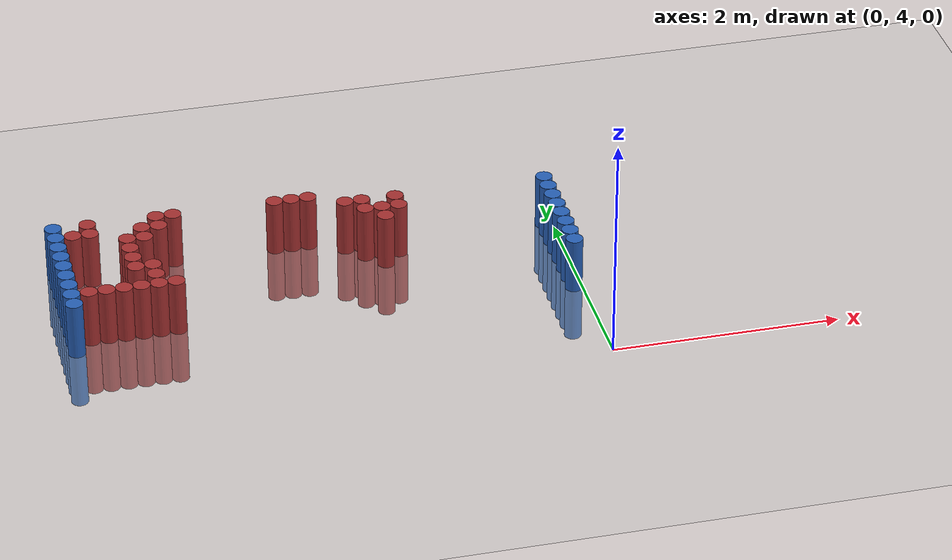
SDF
<sdf version="1.6">
 <world name="default">
  <model name="ground_plane">
   <static>1</static>
   <link name="link">
    <collision name="collision">
     <geometry><plane><normal>0 0 1</normal><size>100 100</size></plane></geometry>
     <surface><friction><ode><mu>100</mu><mu2>50</mu2></ode></friction></surface>
    </collision>
    <visual name="visual">
     <cast_shadows>0</cast_shadows>
     <geometry><plane><normal>0 0 1</normal><size>100 100</size></plane></geometry>
     <material>
      <script><uri>file://media/materials/scripts/gazebo.material</uri><name>Gazebo/Grey</name></script>
     </material>
    </visual>
   </link>
  </model>
  <model name="unit_cylinder_94">
   <static>1</static>
   <pose>-0.075000 5.025000 0.000000 0.000000 0.000000 0.000000</pose>
   <link name="link">
    <inertial>
     <mass>1</mass>
     <inertia><ixx>0.145833</ixx><ixy>0</ixy><ixz>0</ixz><iyy>0.145833</iyy><iyz>0</iyz><izz>0.125</izz></inertia>
    </inertial>
    <collision name="collision">
     <geometry><cylinder><radius>0.075000</radius><length>1</length></cylinder></geometry>
    </collision>
    <visual name="visual">
     <geometry><cylinder><radius>0.075000</radius><length>1</length></cylinder></geometry>
     <material>
      <ambient>0.152000 0.379000 0.720000 1</ambient>
      <diffuse>0.152000 0.379000 0.720000 1</diffuse>
     </material>
     <material>
      <script><name>Gazebo/Grey</name><uri>file://media/materials/scripts/gazebo.material</uri></script>
     </material>
    </visual>
   </link>
  </model>
  <model name="unit_cylinder_95">
   <static>1</static>
   <pose>-4.425000 5.025000 0.000000 0.000000 0.000000 0.000000</pose>
   <link name="link">
    <inertial>
     <mass>1</mass>
     <inertia><ixx>0.145833</ixx><ixy>0</ixy><ixz>0</ixz><iyy>0.145833</iyy><iyz>0</iyz><izz>0.125</izz></inertia>
    </inertial>
    <collision name="collision">
     <geometry><cylinder><radius>0.075000</radius><length>1</length></cylinder></geometry>
    </collision>
    <visual name="visual">
     <geometry><cylinder><radius>0.075000</radius><length>1</length></cylinder></geometry>
     <material>
      <ambient>0.152000 0.379000 0.720000 1</ambient>
      <diffuse>0.152000 0.379000 0.720000 1</diffuse>
     </material>
     <material>
      <script><name>Gazebo/Grey</name><uri>file://media/materials/scripts/gazebo.material</uri></script>
     </material>
    </visual>
   </link>
  </model>
  <model name="unit_cylinder_96">
   <static>1</static>
   <pose>-4.425000 5.175000 0.000000 0.000000 0.000000 0.000000</pose>
   <link name="link">
    <inertial>
     <mass>1</mass>
     <inertia><ixx>0.145833</ixx><ixy>0</ixy><ixz>0</ixz><iyy>0.145833</iyy><iyz>0</iyz><izz>0.125</izz></inertia>
    </inertial>
    <collision name="collision">
     <geometry><cylinder><radius>0.075000</radius><length>1</length></cylinder></geometry>
    </collision>
    <visual name="visual">
     <geometry><cylinder><radius>0.075000</radius><length>1</length></cylinder></geometry>
     <material>
      <ambient>0.152000 0.379000 0.720000 1</ambient>
      <diffuse>0.152000 0.379000 0.720000 1</diffuse>
     </material>
     <material>
      <script><name>Gazebo/Grey</name><uri>file://media/materials/scripts/gazebo.material</uri></script>
     </material>
    </visual>
   </link>
  </model>
  <model name="unit_cylinder_97">
   <static>1</static>
   <pose>-4.425000 5.325000 0.000000 0.000000 0.000000 0.000000</pose>
   <link name="link">
    <inertial>
     <mass>1</mass>
     <inertia><ixx>0.145833</ixx><ixy>0</ixy><ixz>0</ixz><iyy>0.145833</iyy><iyz>0</iyz><izz>0.125</izz></inertia>
    </inertial>
    <collision name="collision">
     <geometry><cylinder><radius>0.075000</radius><length>1</length></cylinder></geometry>
    </collision>
    <visual name="visual">
     <geometry><cylinder><radius>0.075000</radius><length>1</length></cylinder></geometry>
     <material>
      <ambient>0.152000 0.379000 0.720000 1</ambient>
      <diffuse>0.152000 0.379000 0.720000 1</diffuse>
     </material>
     <material>
      <script><name>Gazebo/Grey</name><uri>file://media/materials/scripts/gazebo.material</uri></script>
     </material>
    </visual>
   </link>
  </model>
  <model name="unit_cylinder_98">
   <static>1</static>
   <pose>-4.425000 5.475000 0.000000 0.000000 0.000000 0.000000</pose>
   <link name="link">
    <inertial>
     <mass>1</mass>
     <inertia><ixx>0.145833</ixx><ixy>0</ixy><ixz>0</ixz><iyy>0.145833</iyy><iyz>0</iyz><izz>0.125</izz></inertia>
    </inertial>
    <collision name="collision">
     <geometry><cylinder><radius>0.075000</radius><length>1</length></cylinder></geometry>
    </collision>
    <visual name="visual">
     <geometry><cylinder><radius>0.075000</radius><length>1</length></cylinder></geometry>
     <material>
      <ambient>0.152000 0.379000 0.720000 1</ambient>
      <diffuse>0.152000 0.379000 0.720000 1</diffuse>
     </material>
     <material>
      <script><name>Gazebo/Grey</name><uri>file://media/materials/scripts/gazebo.material</uri></script>
     </material>
    </visual>
   </link>
  </model>
  <model name="unit_cylinder_99">
   <static>1</static>
   <pose>-4.425000 5.625000 0.000000 0.000000 0.000000 0.000000</pose>
   <link name="link">
    <inertial>
     <mass>1</mass>
     <inertia><ixx>0.145833</ixx><ixy>0</ixy><ixz>0</ixz><iyy>0.145833</iyy><iyz>0</iyz><izz>0.125</izz></inertia>
    </inertial>
    <collision name="collision">
     <geometry><cylinder><radius>0.075000</radius><length>1</length></cylinder></geometry>
    </collision>
    <visual name="visual">
     <geometry><cylinder><radius>0.075000</radius><length>1</length></cylinder></geometry>
     <material>
      <ambient>0.152000 0.379000 0.720000 1</ambient>
      <diffuse>0.152000 0.379000 0.720000 1</diffuse>
     </material>
     <material>
      <script><name>Gazebo/Grey</name><uri>file://media/materials/scripts/gazebo.material</uri></script>
     </material>
    </visual>
   </link>
  </model>
  <model name="unit_cylinder_100">
   <static>1</static>
   <pose>-4.425000 5.775000 0.000000 0.000000 0.000000 0.000000</pose>
   <link name="link">
    <inertial>
     <mass>1</mass>
     <inertia><ixx>0.145833</ixx><ixy>0</ixy><ixz>0</ixz><iyy>0.145833</iyy><iyz>0</iyz><izz>0.125</izz></inertia>
    </inertial>
    <collision name="collision">
     <geometry><cylinder><radius>0.075000</radius><length>1</length></cylinder></geometry>
    </collision>
    <visual name="visual">
     <geometry><cylinder><radius>0.075000</radius><length>1</length></cylinder></geometry>
     <material>
      <ambient>0.152000 0.379000 0.720000 1</ambient>
      <diffuse>0.152000 0.379000 0.720000 1</diffuse>
     </material>
     <material>
      <script><name>Gazebo/Grey</name><uri>file://media/materials/scripts/gazebo.material</uri></script>
     </material>
    </visual>
   </link>
  </model>
  <model name="unit_cylinder_101">
   <static>1</static>
   <pose>-4.425000 5.925000 0.000000 0.000000 0.000000 0.000000</pose>
   <link name="link">
    <inertial>
     <mass>1</mass>
     <inertia><ixx>0.145833</ixx><ixy>0</ixy><ixz>0</ixz><iyy>0.145833</iyy><iyz>0</iyz><izz>0.125</izz></inertia>
    </inertial>
    <collision name="collision">
     <geometry><cylinder><radius>0.075000</radius><length>1</length></cylinder></geometry>
    </collision>
    <visual name="visual">
     <geometry><cylinder><radius>0.075000</radius><length>1</length></cylinder></geometry>
     <material>
      <ambient>0.152000 0.379000 0.720000 1</ambient>
      <diffuse>0.152000 0.379000 0.720000 1</diffuse>
     </material>
     <material>
      <script><name>Gazebo/Grey</name><uri>file://media/materials/scripts/gazebo.material</uri></script>
     </material>
    </visual>
   </link>
  </model>
  <model name="unit_cylinder_102">
   <static>1</static>
   <pose>-4.425000 6.075000 0.000000 0.000000 0.000000 0.000000</pose>
   <link name="link">
    <inertial>
     <mass>1</mass>
     <inertia><ixx>0.145833</ixx><ixy>0</ixy><ixz>0</ixz><iyy>0.145833</iyy><iyz>0</iyz><izz>0.125</izz></inertia>
    </inertial>
    <collision name="collision">
     <geometry><cylinder><radius>0.075000</radius><length>1</length></cylinder></geometry>
    </collision>
    <visual name="visual">
     <geometry><cylinder><radius>0.075000</radius><length>1</length></cylinder></geometry>
     <material>
      <ambient>0.152000 0.379000 0.720000 1</ambient>
      <diffuse>0.152000 0.379000 0.720000 1</diffuse>
     </material>
     <material>
      <script><name>Gazebo/Grey</name><uri>file://media/materials/scripts/gazebo.material</uri></script>
     </material>
    </visual>
   </link>
  </model>
  <model name="unit_cylinder_103">
   <static>1</static>
   <pose>-4.425000 6.225000 0.000000 0.000000 0.000000 0.000000</pose>
   <link name="link">
    <inertial>
     <mass>1</mass>
     <inertia><ixx>0.145833</ixx><ixy>0</ixy><ixz>0</ixz><iyy>0.145833</iyy><iyz>0</iyz><izz>0.125</izz></inertia>
    </inertial>
    <collision name="collision">
     <geometry><cylinder><radius>0.075000</radius><length>1</length></cylinder></geometry>
    </collision>
    <visual name="visual">
     <geometry><cylinder><radius>0.075000</radius><length>1</length></cylinder></geometry>
     <material>
      <ambient>0.152000 0.379000 0.720000 1</ambient>
      <diffuse>0.152000 0.379000 0.720000 1</diffuse>
     </material>
     <material>
      <script><name>Gazebo/Grey</name><uri>file://media/materials/scripts/gazebo.material</uri></script>
     </material>
    </visual>
   </link>
  </model>
  <model name="unit_cylinder_126">
   <static>1</static>
   <pose>-4.275000 5.175000 0.000000 0.000000 0.000000 0.000000</pose>
   <link name="link">
    <inertial>
     <mass>1</mass>
     <inertia><ixx>0.145833</ixx><ixy>0</ixy><ixz>0</ixz><iyy>0.145833</iyy><iyz>0</iyz><izz>0.125</izz></inertia>
    </inertial>
    <collision name="collision">
     <geometry><cylinder><radius>0.075000</radius><length>1</length></cylinder></geometry>
    </collision>
    <visual name="visual">
     <geometry><cylinder><radius>0.075000</radius><length>1</length></cylinder></geometry>
     <material>
      <ambient>0.648000 0.192000 0.192000 1</ambient>
      <diffuse>0.648000 0.192000 0.192000 1</diffuse>
     </material>
     <material>
      <script><name>Gazebo/Grey</name><uri>file://media/materials/scripts/gazebo.material</uri></script>
     </material>
    </visual>
   </link>
  </model>
  <model name="unit_cylinder_127">
   <static>1</static>
   <pose>-4.275000 6.075000 0.000000 0.000000 0.000000 0.000000</pose>
   <link name="link">
    <inertial>
     <mass>1</mass>
     <inertia><ixx>0.145833</ixx><ixy>0</ixy><ixz>0</ixz><iyy>0.145833</iyy><iyz>0</iyz><izz>0.125</izz></inertia>
    </inertial>
    <collision name="collision">
     <geometry><cylinder><radius>0.075000</radius><length>1</length></cylinder></geometry>
    </collision>
    <visual name="visual">
     <geometry><cylinder><radius>0.075000</radius><length>1</length></cylinder></geometry>
     <material>
      <ambient>0.648000 0.192000 0.192000 1</ambient>
      <diffuse>0.648000 0.192000 0.192000 1</diffuse>
     </material>
     <material>
      <script><name>Gazebo/Grey</name><uri>file://media/materials/scripts/gazebo.material</uri></script>
     </material>
    </visual>
   </link>
  </model>
  <model name="unit_cylinder_130">
   <static>1</static>
   <pose>-4.125000 5.175000 0.000000 0.000000 0.000000 0.000000</pose>
   <link name="link">
    <inertial>
     <mass>1</mass>
     <inertia><ixx>0.145833</ixx><ixy>0</ixy><ixz>0</ixz><iyy>0.145833</iyy><iyz>0</iyz><izz>0.125</izz></inertia>
    </inertial>
    <collision name="collision">
     <geometry><cylinder><radius>0.075000</radius><length>1</length></cylinder></geometry>
    </collision>
    <visual name="visual">
     <geometry><cylinder><radius>0.075000</radius><length>1</length></cylinder></geometry>
     <material>
      <ambient>0.648000 0.192000 0.192000 1</ambient>
      <diffuse>0.648000 0.192000 0.192000 1</diffuse>
     </material>
     <material>
      <script><name>Gazebo/Grey</name><uri>file://media/materials/scripts/gazebo.material</uri></script>
     </material>
    </visual>
   </link>
  </model>
  <model name="unit_cylinder_131">
   <static>1</static>
   <pose>-4.125000 6.075000 0.000000 0.000000 0.000000 0.000000</pose>
   <link name="link">
    <inertial>
     <mass>1</mass>
     <inertia><ixx>0.145833</ixx><ixy>0</ixy><ixz>0</ixz><iyy>0.145833</iyy><iyz>0</iyz><izz>0.125</izz></inertia>
    </inertial>
    <collision name="collision">
     <geometry><cylinder><radius>0.075000</radius><length>1</length></cylinder></geometry>
    </collision>
    <visual name="visual">
     <geometry><cylinder><radius>0.075000</radius><length>1</length></cylinder></geometry>
     <material>
      <ambient>0.648000 0.192000 0.192000 1</ambient>
      <diffuse>0.648000 0.192000 0.192000 1</diffuse>
     </material>
     <material>
      <script><name>Gazebo/Grey</name><uri>file://media/materials/scripts/gazebo.material</uri></script>
     </material>
    </visual>
   </link>
  </model>
  <model name="unit_cylinder_132">
   <static>1</static>
   <pose>-4.125000 6.225000 0.000000 0.000000 0.000000 0.000000</pose>
   <link name="link">
    <inertial>
     <mass>1</mass>
     <inertia><ixx>0.145833</ixx><ixy>0</ixy><ixz>0</ixz><iyy>0.145833</iyy><iyz>0</iyz><izz>0.125</izz></inertia>
    </inertial>
    <collision name="collision">
     <geometry><cylinder><radius>0.075000</radius><length>1</length></cylinder></geometry>
    </collision>
    <visual name="visual">
     <geometry><cylinder><radius>0.075000</radius><length>1</length></cylinder></geometry>
     <material>
      <ambient>0.648000 0.192000 0.192000 1</ambient>
      <diffuse>0.648000 0.192000 0.192000 1</diffuse>
     </material>
     <material>
      <script><name>Gazebo/Grey</name><uri>file://media/materials/scripts/gazebo.material</uri></script>
     </material>
    </visual>
   </link>
  </model>
  <model name="unit_cylinder_136">
   <static>1</static>
   <pose>-3.975000 5.175000 0.000000 0.000000 0.000000 0.000000</pose>
   <link name="link">
    <inertial>
     <mass>1</mass>
     <inertia><ixx>0.145833</ixx><ixy>0</ixy><ixz>0</ixz><iyy>0.145833</iyy><iyz>0</iyz><izz>0.125</izz></inertia>
    </inertial>
    <collision name="collision">
     <geometry><cylinder><radius>0.075000</radius><length>1</length></cylinder></geometry>
    </collision>
    <visual name="visual">
     <geometry><cylinder><radius>0.075000</radius><length>1</length></cylinder></geometry>
     <material>
      <ambient>0.648000 0.192000 0.192000 1</ambient>
      <diffuse>0.648000 0.192000 0.192000 1</diffuse>
     </material>
     <material>
      <script><name>Gazebo/Grey</name><uri>file://media/materials/scripts/gazebo.material</uri></script>
     </material>
    </visual>
   </link>
  </model>
  <model name="unit_cylinder_139">
   <static>1</static>
   <pose>-3.825000 5.175000 0.000000 0.000000 0.000000 0.000000</pose>
   <link name="link">
    <inertial>
     <mass>1</mass>
     <inertia><ixx>0.145833</ixx><ixy>0</ixy><ixz>0</ixz><iyy>0.145833</iyy><iyz>0</iyz><izz>0.125</izz></inertia>
    </inertial>
    <collision name="collision">
     <geometry><cylinder><radius>0.075000</radius><length>1</length></cylinder></geometry>
    </collision>
    <visual name="visual">
     <geometry><cylinder><radius>0.075000</radius><length>1</length></cylinder></geometry>
     <material>
      <ambient>0.648000 0.192000 0.192000 1</ambient>
      <diffuse>0.648000 0.192000 0.192000 1</diffuse>
     </material>
     <material>
      <script><name>Gazebo/Grey</name><uri>file://media/materials/scripts/gazebo.material</uri></script>
     </material>
    </visual>
   </link>
  </model>
  <model name="unit_cylinder_140">
   <static>1</static>
   <pose>-3.825000 5.475000 0.000000 0.000000 0.000000 0.000000</pose>
   <link name="link">
    <inertial>
     <mass>1</mass>
     <inertia><ixx>0.145833</ixx><ixy>0</ixy><ixz>0</ixz><iyy>0.145833</iyy><iyz>0</iyz><izz>0.125</izz></inertia>
    </inertial>
    <collision name="collision">
     <geometry><cylinder><radius>0.075000</radius><length>1</length></cylinder></geometry>
    </collision>
    <visual name="visual">
     <geometry><cylinder><radius>0.075000</radius><length>1</length></cylinder></geometry>
     <material>
      <ambient>0.648000 0.192000 0.192000 1</ambient>
      <diffuse>0.648000 0.192000 0.192000 1</diffuse>
     </material>
     <material>
      <script><name>Gazebo/Grey</name><uri>file://media/materials/scripts/gazebo.material</uri></script>
     </material>
    </visual>
   </link>
  </model>
  <model name="unit_cylinder_141">
   <static>1</static>
   <pose>-3.825000 5.625000 0.000000 0.000000 0.000000 0.000000</pose>
   <link name="link">
    <inertial>
     <mass>1</mass>
     <inertia><ixx>0.145833</ixx><ixy>0</ixy><ixz>0</ixz><iyy>0.145833</iyy><iyz>0</iyz><izz>0.125</izz></inertia>
    </inertial>
    <collision name="collision">
     <geometry><cylinder><radius>0.075000</radius><length>1</length></cylinder></geometry>
    </collision>
    <visual name="visual">
     <geometry><cylinder><radius>0.075000</radius><length>1</length></cylinder></geometry>
     <material>
      <ambient>0.648000 0.192000 0.192000 1</ambient>
      <diffuse>0.648000 0.192000 0.192000 1</diffuse>
     </material>
     <material>
      <script><name>Gazebo/Grey</name><uri>file://media/materials/scripts/gazebo.material</uri></script>
     </material>
    </visual>
   </link>
  </model>
  <model name="unit_cylinder_142">
   <static>1</static>
   <pose>-3.825000 5.775000 0.000000 0.000000 0.000000 0.000000</pose>
   <link name="link">
    <inertial>
     <mass>1</mass>
     <inertia><ixx>0.145833</ixx><ixy>0</ixy><ixz>0</ixz><iyy>0.145833</iyy><iyz>0</iyz><izz>0.125</izz></inertia>
    </inertial>
    <collision name="collision">
     <geometry><cylinder><radius>0.075000</radius><length>1</length></cylinder></geometry>
    </collision>
    <visual name="visual">
     <geometry><cylinder><radius>0.075000</radius><length>1</length></cylinder></geometry>
     <material>
      <ambient>0.648000 0.192000 0.192000 1</ambient>
      <diffuse>0.648000 0.192000 0.192000 1</diffuse>
     </material>
     <material>
      <script><name>Gazebo/Grey</name><uri>file://media/materials/scripts/gazebo.material</uri></script>
     </material>
    </visual>
   </link>
  </model>
  <model name="unit_cylinder_143">
   <static>1</static>
   <pose>-3.825000 5.925000 0.000000 0.000000 0.000000 0.000000</pose>
   <link name="link">
    <inertial>
     <mass>1</mass>
     <inertia><ixx>0.145833</ixx><ixy>0</ixy><ixz>0</ixz><iyy>0.145833</iyy><iyz>0</iyz><izz>0.125</izz></inertia>
    </inertial>
    <collision name="collision">
     <geometry><cylinder><radius>0.075000</radius><length>1</length></cylinder></geometry>
    </collision>
    <visual name="visual">
     <geometry><cylinder><radius>0.075000</radius><length>1</length></cylinder></geometry>
     <material>
      <ambient>0.648000 0.192000 0.192000 1</ambient>
      <diffuse>0.648000 0.192000 0.192000 1</diffuse>
     </material>
     <material>
      <script><name>Gazebo/Grey</name><uri>file://media/materials/scripts/gazebo.material</uri></script>
     </material>
    </visual>
   </link>
  </model>
  <model name="unit_cylinder_146">
   <static>1</static>
   <pose>-3.675000 5.175000 0.000000 0.000000 0.000000 0.000000</pose>
   <link name="link">
    <inertial>
     <mass>1</mass>
     <inertia><ixx>0.145833</ixx><ixy>0</ixy><ixz>0</ixz><iyy>0.145833</iyy><iyz>0</iyz><izz>0.125</izz></inertia>
    </inertial>
    <collision name="collision">
     <geometry><cylinder><radius>0.075000</radius><length>1</length></cylinder></geometry>
    </collision>
    <visual name="visual">
     <geometry><cylinder><radius>0.075000</radius><length>1</length></cylinder></geometry>
     <material>
      <ambient>0.648000 0.192000 0.192000 1</ambient>
      <diffuse>0.648000 0.192000 0.192000 1</diffuse>
     </material>
     <material>
      <script><name>Gazebo/Grey</name><uri>file://media/materials/scripts/gazebo.material</uri></script>
     </material>
    </visual>
   </link>
  </model>
  <model name="unit_cylinder_147">
   <static>1</static>
   <pose>-3.675000 5.325000 0.000000 0.000000 0.000000 0.000000</pose>
   <link name="link">
    <inertial>
     <mass>1</mass>
     <inertia><ixx>0.145833</ixx><ixy>0</ixy><ixz>0</ixz><iyy>0.145833</iyy><iyz>0</iyz><izz>0.125</izz></inertia>
    </inertial>
    <collision name="collision">
     <geometry><cylinder><radius>0.075000</radius><length>1</length></cylinder></geometry>
    </collision>
    <visual name="visual">
     <geometry><cylinder><radius>0.075000</radius><length>1</length></cylinder></geometry>
     <material>
      <ambient>0.648000 0.192000 0.192000 1</ambient>
      <diffuse>0.648000 0.192000 0.192000 1</diffuse>
     </material>
     <material>
      <script><name>Gazebo/Grey</name><uri>file://media/materials/scripts/gazebo.material</uri></script>
     </material>
    </visual>
   </link>
  </model>
  <model name="unit_cylinder_148">
   <static>1</static>
   <pose>-3.675000 5.475000 0.000000 0.000000 0.000000 0.000000</pose>
   <link name="link">
    <inertial>
     <mass>1</mass>
     <inertia><ixx>0.145833</ixx><ixy>0</ixy><ixz>0</ixz><iyy>0.145833</iyy><iyz>0</iyz><izz>0.125</izz></inertia>
    </inertial>
    <collision name="collision">
     <geometry><cylinder><radius>0.075000</radius><length>1</length></cylinder></geometry>
    </collision>
    <visual name="visual">
     <geometry><cylinder><radius>0.075000</radius><length>1</length></cylinder></geometry>
     <material>
      <ambient>0.648000 0.192000 0.192000 1</ambient>
      <diffuse>0.648000 0.192000 0.192000 1</diffuse>
     </material>
     <material>
      <script><name>Gazebo/Grey</name><uri>file://media/materials/scripts/gazebo.material</uri></script>
     </material>
    </visual>
   </link>
  </model>
  <model name="unit_cylinder_149">
   <static>1</static>
   <pose>-3.675000 5.925000 0.000000 0.000000 0.000000 0.000000</pose>
   <link name="link">
    <inertial>
     <mass>1</mass>
     <inertia><ixx>0.145833</ixx><ixy>0</ixy><ixz>0</ixz><iyy>0.145833</iyy><iyz>0</iyz><izz>0.125</izz></inertia>
    </inertial>
    <collision name="collision">
     <geometry><cylinder><radius>0.075000</radius><length>1</length></cylinder></geometry>
    </collision>
    <visual name="visual">
     <geometry><cylinder><radius>0.075000</radius><length>1</length></cylinder></geometry>
     <material>
      <ambient>0.648000 0.192000 0.192000 1</ambient>
      <diffuse>0.648000 0.192000 0.192000 1</diffuse>
     </material>
     <material>
      <script><name>Gazebo/Grey</name><uri>file://media/materials/scripts/gazebo.material</uri></script>
     </material>
    </visual>
   </link>
  </model>
  <model name="unit_cylinder_150">
   <static>1</static>
   <pose>-3.675000 6.075000 0.000000 0.000000 0.000000 0.000000</pose>
   <link name="link">
    <inertial>
     <mass>1</mass>
     <inertia><ixx>0.145833</ixx><ixy>0</ixy><ixz>0</ixz><iyy>0.145833</iyy><iyz>0</iyz><izz>0.125</izz></inertia>
    </inertial>
    <collision name="collision">
     <geometry><cylinder><radius>0.075000</radius><length>1</length></cylinder></geometry>
    </collision>
    <visual name="visual">
     <geometry><cylinder><radius>0.075000</radius><length>1</length></cylinder></geometry>
     <material>
      <ambient>0.648000 0.192000 0.192000 1</ambient>
      <diffuse>0.648000 0.192000 0.192000 1</diffuse>
     </material>
     <material>
      <script><name>Gazebo/Grey</name><uri>file://media/materials/scripts/gazebo.material</uri></script>
     </material>
    </visual>
   </link>
  </model>
  <model name="unit_cylinder_152">
   <static>1</static>
   <pose>-3.525000 5.175000 0.000000 0.000000 0.000000 0.000000</pose>
   <link name="link">
    <inertial>
     <mass>1</mass>
     <inertia><ixx>0.145833</ixx><ixy>0</ixy><ixz>0</ixz><iyy>0.145833</iyy><iyz>0</iyz><izz>0.125</izz></inertia>
    </inertial>
    <collision name="collision">
     <geometry><cylinder><radius>0.075000</radius><length>1</length></cylinder></geometry>
    </collision>
    <visual name="visual">
     <geometry><cylinder><radius>0.075000</radius><length>1</length></cylinder></geometry>
     <material>
      <ambient>0.648000 0.192000 0.192000 1</ambient>
      <diffuse>0.648000 0.192000 0.192000 1</diffuse>
     </material>
     <material>
      <script><name>Gazebo/Grey</name><uri>file://media/materials/scripts/gazebo.material</uri></script>
     </material>
    </visual>
   </link>
  </model>
  <model name="unit_cylinder_153">
   <static>1</static>
   <pose>-3.525000 6.075000 0.000000 0.000000 0.000000 0.000000</pose>
   <link name="link">
    <inertial>
     <mass>1</mass>
     <inertia><ixx>0.145833</ixx><ixy>0</ixy><ixz>0</ixz><iyy>0.145833</iyy><iyz>0</iyz><izz>0.125</izz></inertia>
    </inertial>
    <collision name="collision">
     <geometry><cylinder><radius>0.075000</radius><length>1</length></cylinder></geometry>
    </collision>
    <visual name="visual">
     <geometry><cylinder><radius>0.075000</radius><length>1</length></cylinder></geometry>
     <material>
      <ambient>0.648000 0.192000 0.192000 1</ambient>
      <diffuse>0.648000 0.192000 0.192000 1</diffuse>
     </material>
     <material>
      <script><name>Gazebo/Grey</name><uri>file://media/materials/scripts/gazebo.material</uri></script>
     </material>
    </visual>
   </link>
  </model>
  <model name="unit_cylinder_154">
   <static>1</static>
   <pose>-3.525000 6.225000 0.000000 0.000000 0.000000 0.000000</pose>
   <link name="link">
    <inertial>
     <mass>1</mass>
     <inertia><ixx>0.145833</ixx><ixy>0</ixy><ixz>0</ixz><iyy>0.145833</iyy><iyz>0</iyz><izz>0.125</izz></inertia>
    </inertial>
    <collision name="collision">
     <geometry><cylinder><radius>0.075000</radius><length>1</length></cylinder></geometry>
    </collision>
    <visual name="visual">
     <geometry><cylinder><radius>0.075000</radius><length>1</length></cylinder></geometry>
     <material>
      <ambient>0.648000 0.192000 0.192000 1</ambient>
      <diffuse>0.648000 0.192000 0.192000 1</diffuse>
     </material>
     <material>
      <script><name>Gazebo/Grey</name><uri>file://media/materials/scripts/gazebo.material</uri></script>
     </material>
    </visual>
   </link>
  </model>
  <model name="unit_cylinder_157">
   <static>1</static>
   <pose>-3.375000 6.225000 0.000000 0.000000 0.000000 0.000000</pose>
   <link name="link">
    <inertial>
     <mass>1</mass>
     <inertia><ixx>0.145833</ixx><ixy>0</ixy><ixz>0</ixz><iyy>0.145833</iyy><iyz>0</iyz><izz>0.125</izz></inertia>
    </inertial>
    <collision name="collision">
     <geometry><cylinder><radius>0.075000</radius><length>1</length></cylinder></geometry>
    </collision>
    <visual name="visual">
     <geometry><cylinder><radius>0.075000</radius><length>1</length></cylinder></geometry>
     <material>
      <ambient>0.648000 0.192000 0.192000 1</ambient>
      <diffuse>0.648000 0.192000 0.192000 1</diffuse>
     </material>
     <material>
      <script><name>Gazebo/Grey</name><uri>file://media/materials/scripts/gazebo.material</uri></script>
     </material>
    </visual>
   </link>
  </model>
  <model name="unit_cylinder_179">
   <static>1</static>
   <pose>-2.475000 6.225000 0.000000 0.000000 0.000000 0.000000</pose>
   <link name="link">
    <inertial>
     <mass>1</mass>
     <inertia><ixx>0.145833</ixx><ixy>0</ixy><ixz>0</ixz><iyy>0.145833</iyy><iyz>0</iyz><izz>0.125</izz></inertia>
    </inertial>
    <collision name="collision">
     <geometry><cylinder><radius>0.075000</radius><length>1</length></cylinder></geometry>
    </collision>
    <visual name="visual">
     <geometry><cylinder><radius>0.075000</radius><length>1</length></cylinder></geometry>
     <material>
      <ambient>0.648000 0.192000 0.192000 1</ambient>
      <diffuse>0.648000 0.192000 0.192000 1</diffuse>
     </material>
     <material>
      <script><name>Gazebo/Grey</name><uri>file://media/materials/scripts/gazebo.material</uri></script>
     </material>
    </visual>
   </link>
  </model>
  <model name="unit_cylinder_187">
   <static>1</static>
   <pose>-2.325000 6.225000 0.000000 0.000000 0.000000 0.000000</pose>
   <link name="link">
    <inertial>
     <mass>1</mass>
     <inertia><ixx>0.145833</ixx><ixy>0</ixy><ixz>0</ixz><iyy>0.145833</iyy><iyz>0</iyz><izz>0.125</izz></inertia>
    </inertial>
    <collision name="collision">
     <geometry><cylinder><radius>0.075000</radius><length>1</length></cylinder></geometry>
    </collision>
    <visual name="visual">
     <geometry><cylinder><radius>0.075000</radius><length>1</length></cylinder></geometry>
     <material>
      <ambient>0.648000 0.192000 0.192000 1</ambient>
      <diffuse>0.648000 0.192000 0.192000 1</diffuse>
     </material>
     <material>
      <script><name>Gazebo/Grey</name><uri>file://media/materials/scripts/gazebo.material</uri></script>
     </material>
    </visual>
   </link>
  </model>
  <model name="unit_cylinder_195">
   <static>1</static>
   <pose>-2.175000 6.225000 0.000000 0.000000 0.000000 0.000000</pose>
   <link name="link">
    <inertial>
     <mass>1</mass>
     <inertia><ixx>0.145833</ixx><ixy>0</ixy><ixz>0</ixz><iyy>0.145833</iyy><iyz>0</iyz><izz>0.125</izz></inertia>
    </inertial>
    <collision name="collision">
     <geometry><cylinder><radius>0.075000</radius><length>1</length></cylinder></geometry>
    </collision>
    <visual name="visual">
     <geometry><cylinder><radius>0.075000</radius><length>1</length></cylinder></geometry>
     <material>
      <ambient>0.648000 0.192000 0.192000 1</ambient>
      <diffuse>0.648000 0.192000 0.192000 1</diffuse>
     </material>
     <material>
      <script><name>Gazebo/Grey</name><uri>file://media/materials/scripts/gazebo.material</uri></script>
     </material>
    </visual>
   </link>
  </model>
  <model name="unit_cylinder_203">
   <static>1</static>
   <pose>-1.875000 6.075000 0.000000 0.000000 0.000000 0.000000</pose>
   <link name="link">
    <inertial>
     <mass>1</mass>
     <inertia><ixx>0.145833</ixx><ixy>0</ixy><ixz>0</ixz><iyy>0.145833</iyy><iyz>0</iyz><izz>0.125</izz></inertia>
    </inertial>
    <collision name="collision">
     <geometry><cylinder><radius>0.075000</radius><length>1</length></cylinder></geometry>
    </collision>
    <visual name="visual">
     <geometry><cylinder><radius>0.075000</radius><length>1</length></cylinder></geometry>
     <material>
      <ambient>0.648000 0.192000 0.192000 1</ambient>
      <diffuse>0.648000 0.192000 0.192000 1</diffuse>
     </material>
     <material>
      <script><name>Gazebo/Grey</name><uri>file://media/materials/scripts/gazebo.material</uri></script>
     </material>
    </visual>
   </link>
  </model>
  <model name="unit_cylinder_206">
   <static>1</static>
   <pose>-1.725000 5.925000 0.000000 0.000000 0.000000 0.000000</pose>
   <link name="link">
    <inertial>
     <mass>1</mass>
     <inertia><ixx>0.145833</ixx><ixy>0</ixy><ixz>0</ixz><iyy>0.145833</iyy><iyz>0</iyz><izz>0.125</izz></inertia>
    </inertial>
    <collision name="collision">
     <geometry><cylinder><radius>0.075000</radius><length>1</length></cylinder></geometry>
    </collision>
    <visual name="visual">
     <geometry><cylinder><radius>0.075000</radius><length>1</length></cylinder></geometry>
     <material>
      <ambient>0.648000 0.192000 0.192000 1</ambient>
      <diffuse>0.648000 0.192000 0.192000 1</diffuse>
     </material>
     <material>
      <script><name>Gazebo/Grey</name><uri>file://media/materials/scripts/gazebo.material</uri></script>
     </material>
    </visual>
   </link>
  </model>
  <model name="unit_cylinder_207">
   <static>1</static>
   <pose>-1.725000 6.075000 0.000000 0.000000 0.000000 0.000000</pose>
   <link name="link">
    <inertial>
     <mass>1</mass>
     <inertia><ixx>0.145833</ixx><ixy>0</ixy><ixz>0</ixz><iyy>0.145833</iyy><iyz>0</iyz><izz>0.125</izz></inertia>
    </inertial>
    <collision name="collision">
     <geometry><cylinder><radius>0.075000</radius><length>1</length></cylinder></geometry>
    </collision>
    <visual name="visual">
     <geometry><cylinder><radius>0.075000</radius><length>1</length></cylinder></geometry>
     <material>
      <ambient>0.648000 0.192000 0.192000 1</ambient>
      <diffuse>0.648000 0.192000 0.192000 1</diffuse>
     </material>
     <material>
      <script><name>Gazebo/Grey</name><uri>file://media/materials/scripts/gazebo.material</uri></script>
     </material>
    </visual>
   </link>
  </model>
  <model name="unit_cylinder_211">
   <static>1</static>
   <pose>-1.575000 5.775000 0.000000 0.000000 0.000000 0.000000</pose>
   <link name="link">
    <inertial>
     <mass>1</mass>
     <inertia><ixx>0.145833</ixx><ixy>0</ixy><ixz>0</ixz><iyy>0.145833</iyy><iyz>0</iyz><izz>0.125</izz></inertia>
    </inertial>
    <collision name="collision">
     <geometry><cylinder><radius>0.075000</radius><length>1</length></cylinder></geometry>
    </collision>
    <visual name="visual">
     <geometry><cylinder><radius>0.075000</radius><length>1</length></cylinder></geometry>
     <material>
      <ambient>0.648000 0.192000 0.192000 1</ambient>
      <diffuse>0.648000 0.192000 0.192000 1</diffuse>
     </material>
     <material>
      <script><name>Gazebo/Grey</name><uri>file://media/materials/scripts/gazebo.material</uri></script>
     </material>
    </visual>
   </link>
  </model>
  <model name="unit_cylinder_212">
   <static>1</static>
   <pose>-1.575000 5.925000 0.000000 0.000000 0.000000 0.000000</pose>
   <link name="link">
    <inertial>
     <mass>1</mass>
     <inertia><ixx>0.145833</ixx><ixy>0</ixy><ixz>0</ixz><iyy>0.145833</iyy><iyz>0</iyz><izz>0.125</izz></inertia>
    </inertial>
    <collision name="collision">
     <geometry><cylinder><radius>0.075000</radius><length>1</length></cylinder></geometry>
    </collision>
    <visual name="visual">
     <geometry><cylinder><radius>0.075000</radius><length>1</length></cylinder></geometry>
     <material>
      <ambient>0.648000 0.192000 0.192000 1</ambient>
      <diffuse>0.648000 0.192000 0.192000 1</diffuse>
     </material>
     <material>
      <script><name>Gazebo/Grey</name><uri>file://media/materials/scripts/gazebo.material</uri></script>
     </material>
    </visual>
   </link>
  </model>
  <model name="unit_cylinder_218">
   <static>1</static>
   <pose>-1.425000 5.925000 0.000000 0.000000 0.000000 0.000000</pose>
   <link name="link">
    <inertial>
     <mass>1</mass>
     <inertia><ixx>0.145833</ixx><ixy>0</ixy><ixz>0</ixz><iyy>0.145833</iyy><iyz>0</iyz><izz>0.125</izz></inertia>
    </inertial>
    <collision name="collision">
     <geometry><cylinder><radius>0.075000</radius><length>1</length></cylinder></geometry>
    </collision>
    <visual name="visual">
     <geometry><cylinder><radius>0.075000</radius><length>1</length></cylinder></geometry>
     <material>
      <ambient>0.648000 0.192000 0.192000 1</ambient>
      <diffuse>0.648000 0.192000 0.192000 1</diffuse>
     </material>
     <material>
      <script><name>Gazebo/Grey</name><uri>file://media/materials/scripts/gazebo.material</uri></script>
     </material>
    </visual>
   </link>
  </model>
  <model name="unit_cylinder_219">
   <static>1</static>
   <pose>-1.425000 6.075000 0.000000 0.000000 0.000000 0.000000</pose>
   <link name="link">
    <inertial>
     <mass>1</mass>
     <inertia><ixx>0.145833</ixx><ixy>0</ixy><ixz>0</ixz><iyy>0.145833</iyy><iyz>0</iyz><izz>0.125</izz></inertia>
    </inertial>
    <collision name="collision">
     <geometry><cylinder><radius>0.075000</radius><length>1</length></cylinder></geometry>
    </collision>
    <visual name="visual">
     <geometry><cylinder><radius>0.075000</radius><length>1</length></cylinder></geometry>
     <material>
      <ambient>0.648000 0.192000 0.192000 1</ambient>
      <diffuse>0.648000 0.192000 0.192000 1</diffuse>
     </material>
     <material>
      <script><name>Gazebo/Grey</name><uri>file://media/materials/scripts/gazebo.material</uri></script>
     </material>
    </visual>
   </link>
  </model>
  <model name="unit_cylinder_251">
   <static>1</static>
   <pose>-0.075000 5.175000 0.000000 0.000000 0.000000 0.000000</pose>
   <link name="link">
    <inertial>
     <mass>1</mass>
     <inertia><ixx>0.145833</ixx><ixy>0</ixy><ixz>0</ixz><iyy>0.145833</iyy><iyz>0</iyz><izz>0.125</izz></inertia>
    </inertial>
    <collision name="collision">
     <geometry><cylinder><radius>0.075000</radius><length>1</length></cylinder></geometry>
    </collision>
    <visual name="visual">
     <geometry><cylinder><radius>0.075000</radius><length>1</length></cylinder></geometry>
     <material>
      <ambient>0.152000 0.379000 0.720000 1</ambient>
      <diffuse>0.152000 0.379000 0.720000 1</diffuse>
     </material>
     <material>
      <script><name>Gazebo/Grey</name><uri>file://media/materials/scripts/gazebo.material</uri></script>
     </material>
    </visual>
   </link>
  </model>
  <model name="unit_cylinder_252">
   <static>1</static>
   <pose>-0.075000 5.325000 0.000000 0.000000 0.000000 0.000000</pose>
   <link name="link">
    <inertial>
     <mass>1</mass>
     <inertia><ixx>0.145833</ixx><ixy>0</ixy><ixz>0</ixz><iyy>0.145833</iyy><iyz>0</iyz><izz>0.125</izz></inertia>
    </inertial>
    <collision name="collision">
     <geometry><cylinder><radius>0.075000</radius><length>1</length></cylinder></geometry>
    </collision>
    <visual name="visual">
     <geometry><cylinder><radius>0.075000</radius><length>1</length></cylinder></geometry>
     <material>
      <ambient>0.152000 0.379000 0.720000 1</ambient>
      <diffuse>0.152000 0.379000 0.720000 1</diffuse>
     </material>
     <material>
      <script><name>Gazebo/Grey</name><uri>file://media/materials/scripts/gazebo.material</uri></script>
     </material>
    </visual>
   </link>
  </model>
  <model name="unit_cylinder_253">
   <static>1</static>
   <pose>-0.075000 5.475000 0.000000 0.000000 0.000000 0.000000</pose>
   <link name="link">
    <inertial>
     <mass>1</mass>
     <inertia><ixx>0.145833</ixx><ixy>0</ixy><ixz>0</ixz><iyy>0.145833</iyy><iyz>0</iyz><izz>0.125</izz></inertia>
    </inertial>
    <collision name="collision">
     <geometry><cylinder><radius>0.075000</radius><length>1</length></cylinder></geometry>
    </collision>
    <visual name="visual">
     <geometry><cylinder><radius>0.075000</radius><length>1</length></cylinder></geometry>
     <material>
      <ambient>0.152000 0.379000 0.720000 1</ambient>
      <diffuse>0.152000 0.379000 0.720000 1</diffuse>
     </material>
     <material>
      <script><name>Gazebo/Grey</name><uri>file://media/materials/scripts/gazebo.material</uri></script>
     </material>
    </visual>
   </link>
  </model>
  <model name="unit_cylinder_254">
   <static>1</static>
   <pose>-0.075000 5.625000 0.000000 0.000000 0.000000 0.000000</pose>
   <link name="link">
    <inertial>
     <mass>1</mass>
     <inertia><ixx>0.145833</ixx><ixy>0</ixy><ixz>0</ixz><iyy>0.145833</iyy><iyz>0</iyz><izz>0.125</izz></inertia>
    </inertial>
    <collision name="collision">
     <geometry><cylinder><radius>0.075000</radius><length>1</length></cylinder></geometry>
    </collision>
    <visual name="visual">
     <geometry><cylinder><radius>0.075000</radius><length>1</length></cylinder></geometry>
     <material>
      <ambient>0.152000 0.379000 0.720000 1</ambient>
      <diffuse>0.152000 0.379000 0.720000 1</diffuse>
     </material>
     <material>
      <script><name>Gazebo/Grey</name><uri>file://media/materials/scripts/gazebo.material</uri></script>
     </material>
    </visual>
   </link>
  </model>
  <model name="unit_cylinder_255">
   <static>1</static>
   <pose>-0.075000 5.775000 0.000000 0.000000 0.000000 0.000000</pose>
   <link name="link">
    <inertial>
     <mass>1</mass>
     <inertia><ixx>0.145833</ixx><ixy>0</ixy><ixz>0</ixz><iyy>0.145833</iyy><iyz>0</iyz><izz>0.125</izz></inertia>
    </inertial>
    <collision name="collision">
     <geometry><cylinder><radius>0.075000</radius><length>1</length></cylinder></geometry>
    </collision>
    <visual name="visual">
     <geometry><cylinder><radius>0.075000</radius><length>1</length></cylinder></geometry>
     <material>
      <ambient>0.152000 0.379000 0.720000 1</ambient>
      <diffuse>0.152000 0.379000 0.720000 1</diffuse>
     </material>
     <material>
      <script><name>Gazebo/Grey</name><uri>file://media/materials/scripts/gazebo.material</uri></script>
     </material>
    </visual>
   </link>
  </model>
  <model name="unit_cylinder_256">
   <static>1</static>
   <pose>-0.075000 5.925000 0.000000 0.000000 0.000000 0.000000</pose>
   <link name="link">
    <inertial>
     <mass>1</mass>
     <inertia><ixx>0.145833</ixx><ixy>0</ixy><ixz>0</ixz><iyy>0.145833</iyy><iyz>0</iyz><izz>0.125</izz></inertia>
    </inertial>
    <collision name="collision">
     <geometry><cylinder><radius>0.075000</radius><length>1</length></cylinder></geometry>
    </collision>
    <visual name="visual">
     <geometry><cylinder><radius>0.075000</radius><length>1</length></cylinder></geometry>
     <material>
      <ambient>0.152000 0.379000 0.720000 1</ambient>
      <diffuse>0.152000 0.379000 0.720000 1</diffuse>
     </material>
     <material>
      <script><name>Gazebo/Grey</name><uri>file://media/materials/scripts/gazebo.material</uri></script>
     </material>
    </visual>
   </link>
  </model>
  <model name="unit_cylinder_257">
   <static>1</static>
   <pose>-0.075000 6.075000 0.000000 0.000000 0.000000 0.000000</pose>
   <link name="link">
    <inertial>
     <mass>1</mass>
     <inertia><ixx>0.145833</ixx><ixy>0</ixy><ixz>0</ixz><iyy>0.145833</iyy><iyz>0</iyz><izz>0.125</izz></inertia>
    </inertial>
    <collision name="collision">
     <geometry><cylinder><radius>0.075000</radius><length>1</length></cylinder></geometry>
    </collision>
    <visual name="visual">
     <geometry><cylinder><radius>0.075000</radius><length>1</length></cylinder></geometry>
     <material>
      <ambient>0.152000 0.379000 0.720000 1</ambient>
      <diffuse>0.152000 0.379000 0.720000 1</diffuse>
     </material>
     <material>
      <script><name>Gazebo/Grey</name><uri>file://media/materials/scripts/gazebo.material</uri></script>
     </material>
    </visual>
   </link>
  </model>
 </world>
</sdf>
